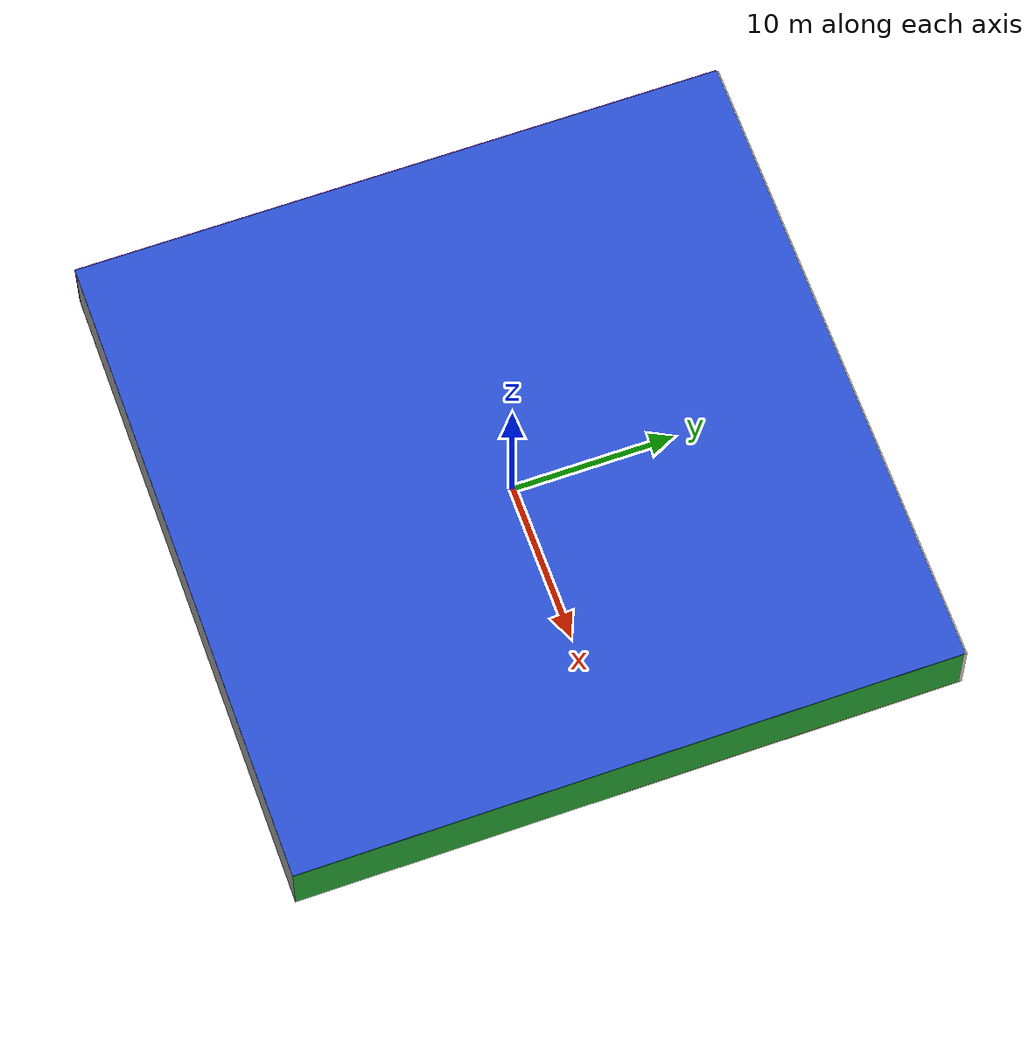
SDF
<sdf version="1.4">
 <world name="default">
  <physics type="ode">
   <max_step_size>0.001</max_step_size>
   <real_time_factor>1</real_time_factor>
   <real_time_update_rate>1000</real_time_update_rate>
   <gravity>0 0 -9.8</gravity>
  </physics>
  <scene><ambient>0.4 0.4 0.4 1</ambient><background>0.7 0.7 0.7 1</background><shadows>1</shadows></scene>
  <model name="Surrounding">
   <static>1</static>
   <link name="Ceiling">
    <collision name="Ceiling_Collision"><geometry><box><size>40 40 0.1</size></box></geometry></collision>
    <visual name="Ceiling_Visual">
     <geometry><box><size>40 40 0.1</size></box></geometry>
     <material>
      <script><uri>file://media/materials/scripts/gazebo.material</uri><name>Gazebo/BlueGlow</name></script>
     </material>
    </visual>
    <pose>0 0 4.05 0 0 0</pose>
   </link>
   <link name="Wall_South">
    <collision name="Wall_South_Collision">
     <geometry><box><size>40 0 4</size></box></geometry>
     <pose>0 0 2 0 -0 0</pose>
    </collision>
    <visual name="Wall_South_Visual">
     <pose>0 0 2 0 -0 0</pose>
     <geometry><box><size>40 0 4</size></box></geometry>
     <material>
      <script><uri>file://media/materials/scripts/gazebo.material</uri><name>Gazebo/LightOff</name></script>
     </material>
    </visual>
    <velocity_decay><linear>0</linear><angular>0</angular></velocity_decay>
    <pose>0 -20 0 0 -0 0</pose>
   </link>
   <link name="Wall_East">
    <collision name="Wall_21_Collision">
     <geometry><box><size>40 0 4</size></box></geometry>
     <pose>0 0 2 0 -0 0</pose>
    </collision>
    <visual name="Wall_21_Visual">
     <pose>0 0 2 0 -0 0</pose>
     <geometry><box><size>40 0 4</size></box></geometry>
     <material>
      <script><uri>file://media/materials/scripts/gazebo.material</uri><name>Gazebo/Green</name></script>
     </material>
    </visual>
    <velocity_decay><linear>0</linear><angular>0</angular></velocity_decay>
    <pose>20 0 0 0 -0 1.5708</pose>
   </link>
   <link name="Wall_North">
    <collision name="Wall_22_Collision">
     <geometry><box><size>40 0.2 4</size></box></geometry>
     <pose>0 0 2 0 -0 0</pose>
    </collision>
    <visual name="Wall_22_Visual">
     <pose>0 0 2 0 -0 0</pose>
     <geometry><box><size>40 0.2 4</size></box></geometry>
     <material>
      <script><uri>file://media/materials/scripts/gazebo.material</uri><name>Gazebo/PaintedWall</name></script>
     </material>
    </visual>
    <velocity_decay><linear>0</linear><angular>0</angular></velocity_decay>
    <pose>0 20 0 0 -0 0</pose>
   </link>
   <link name="Wall_West">
    <collision name="Wall_23_Collision">
     <geometry><box><size>40 0.2 4</size></box></geometry>
     <pose>0 0 2 0 -0 0</pose>
    </collision>
    <visual name="Wall_23_Visual">
     <pose>0 0 2 0 -0 0</pose>
     <geometry><box><size>40 0.2 4</size></box></geometry>
     <material>
      <script><uri>file://media/materials/scripts/gazebo.material</uri><name>Gazebo/PurpleGlow</name></script>
     </material>
    </visual>
    <velocity_decay><linear>0</linear><angular>0</angular></velocity_decay>
    <pose>-20 0 0 0 0 -1.5708</pose>
   </link>
   <link name="Ground_link">
    <collision name="collision">
     <pose>0 0 .05 0 -0 0</pose>
     <geometry><box><size>40 40 0.1</size></box></geometry>
    </collision>
    <visual name="visual">
     <pose>0 0 .05 0 -0 0</pose>
     <geometry><box><size>40 40 0.1</size></box></geometry>
     <material>
      <script><uri>file://media/materials/scripts/gazebo.material</uri><name>Gazebo/Wood</name></script>
     </material>
    </visual>
   </link>
   <static>1</static>
  </model>
  <spherical_coordinates>
   <surface_model>EARTH_WGS84</surface_model>
   <latitude_deg>0</latitude_deg>
   <longitude_deg>0</longitude_deg>
   <elevation>0</elevation>
   <heading_deg>0</heading_deg>
  </spherical_coordinates>
  <light name="lightball_0" type="diffuse">
   <diffuse>0.8 0.8 0.8 1</diffuse>
   <specular>0.2 0.2 0.2 1</specular>
   <attenuation>
    <range>100</range>
    <constant>0.7</constant>
    <linear>0.01</linear>
    <quadratic>0.001</quadratic>
   </attenuation>
   <direction>-0.5 0.1 -0.9</direction>
   <pose>-7.49268496677 5.64581170607 1.53740365004 0 0 0</pose>
  </light>
  <include>
   <uri>model://textured_shapes</uri>
   <pose>-17.7139396784 -5.66665036204 0 0 0 1.77857746207</pose>
  </include>
  <include>
   <uri>model://construction_cone</uri>
   <pose>-16.902303596 3.53384082745 0 0 0 1.17820589428</pose>
  </include>
  <include><uri>model://cabinet</uri><pose>-13.603575059 -8.8379703978 0 0 0 2.51397249955</pose></include>
  <include><uri>model://table</uri><pose>-13.3305007811 0.425295118613 0 0 0 2.99754832821</pose></include>
  <include><uri>model://cabinet</uri><pose>-14.3325957967 3.57796937343 0 0 0 2.78332703134</pose></include>
  <include><uri>model://cabinet</uri><pose>-10.4963402387 -17.9041706436 0 0 0 2.9330787261</pose></include>
  <include><uri>model://cabinet</uri><pose>-9.59631780196 -9.64378596842 0 0 0 2.1701757286</pose></include>
  <include><uri>model://cabinet</uri><pose>-9.21484892748 -5.4380449082 0 0 0 1.11270043813</pose></include>
  <include><uri>model://cabinet</uri><pose>-8.12812921546 11.6013227913 0 0 0 0.618365578345</pose></include>
  <include><uri>model://cabinet</uri><pose>-1.88743537067 11.6414455122 0 0 0 0.126953449659</pose></include>
  <include>
   <uri>model://textured_shapes</uri>
   <pose>0.747187110208 1.00697843749 0 0 0 2.60265532698</pose>
  </include>
  <include>
   <uri>model://construction_cone</uri>
   <pose>4.13556850455 18.7465525698 0 0 0 2.8279445582</pose>
  </include>
  <include>
   <uri>model://robocup_3Dsim_goal</uri>
   <pose>6.2053045 5.97335531568 0 0 0 2.11258530609</pose>
  </include>
  <include>
   <uri>model://textured_shapes</uri>
   <pose>10.3669894287 -12.6572443429 0 0 0 0.0591766086448</pose>
  </include>
  <include>
   <uri>model://construction_cone</uri>
   <pose>9.25496805019 2.38136271672 0 0 0 2.94043046932</pose>
  </include>
  <include>
   <uri>model://robocup_3Dsim_goal</uri>
   <pose>8.85381456302 16.2263090684 0 0 0 2.62539319858</pose>
  </include>
  <include>
   <uri>model://construction_cone</uri>
   <pose>11.951099899 -12.6416692971 0 0 0 0.153515249638</pose>
  </include>
  <include>
   <uri>model://robocup_3Dsim_goal</uri>
   <pose>15.1668383576 15.5690490581 0 0 0 2.35776373647</pose>
  </include>
  <include>
   <uri>model://construction_cone</uri>
   <pose>15.4783931576 17.4967224588 0 0 0 3.11510727463</pose>
  </include>
  <include><uri>model://cabinet</uri><pose>19.029194274 -11.5198528219 0 0 0 3.02029419446</pose></include>
  <include><uri>model://table</uri><pose>18.1528489749 -8.35833427066 0 0 0 1.42211855814</pose></include>
 </world>
</sdf>

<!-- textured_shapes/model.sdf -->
<sdf version="1.6">
  <model name="textured_shapes">
    <pose>0 0 0.5 0 0 0</pose>
    <link name="box">
      <pose>0 -1.5 0 0 0 0</pose>
      <collision name="collision">
        <geometry>
          <box>
            <size>1 1 1</size>
          </box>
        </geometry>
      </collision>
      <visual name="visual">
        <geometry>
          <box>
            <size>1 1 1</size>
          </box>
        </geometry>
        <material>
          <script>
            <uri>model://../model_source/models/textured_shapes/materials/scripts</uri>
            <uri>model://../model_source/models/textured_shapes/materials/textures</uri>
            <name>TexturedShape/Squares</name>
          </script>
        </material>
      </visual>
    </link>
    <link name="sphere">
      <collision name="collision">
        <geometry>
          <sphere>
            <radius>0.5</radius>
          </sphere>
        </geometry>
      </collision>
      <visual name="visual">
        <geometry>
          <sphere>
            <radius>0.5</radius>
          </sphere>
        </geometry>
        <material>
          <script>
            <uri>model://../model_source/models/textured_shapes/materials/scripts</uri>
            <uri>model://../model_source/models/textured_shapes/materials/textures</uri>
            <name>TexturedShape/Squares</name>
          </script>
        </material>
      </visual>
    </link>
    <link name="cylinder">
      <pose>0 1.5 0 0 0 0</pose>
      <collision name="collision">
        <geometry>
          <cylinder>
            <radius>0.5</radius>
            <length>1</length>
          </cylinder>
        </geometry>
      </collision>
      <visual name="visual">
        <geometry>
          <cylinder>
            <radius>0.5</radius>
            <length>1</length>
          </cylinder>
        </geometry>
        <material>
          <script>
            <uri>model://../model_source/models/textured_shapes/materials/scripts</uri>
            <uri>model://../model_source/models/textured_shapes/materials/textures</uri>
            <name>TexturedShape/Squares</name>
          </script>
        </material>
      </visual>
    </link>
  </model>
</sdf>

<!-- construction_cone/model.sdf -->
<sdf version="1.5">
  <model name="Construction Cone">
    <link name="link">
      <collision name="collision">
        <geometry>
          <mesh>
            <scale>10 10 10</scale>
            <uri>file://isr-testbed/construction_cone/meshes/construction_cone.dae</uri>
          </mesh>
        </geometry>
      </collision>
      <visual name="visual">
        <geometry>
          <mesh>
            <scale>10 10 10</scale>
            <uri>file://isr-testbed/construction_cone/meshes/construction_cone.dae</uri>
          </mesh>
        </geometry>
      </visual>
    </link>
  </model>
</sdf>

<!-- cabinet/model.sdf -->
<sdf version="1.5">
  <model name="cabinet">
    <static>true</static>
    <link name="cabinet_bottom_plate">
      <inertial>
        <pose>0 0 -1 0 0 0</pose>
        <inertia>
          <ixx>2.050000</ixx>
          <ixy>0</ixy>
          <ixz>0</ixz>
          <iyy>2.050000</iyy>
          <iyz>0</iyz>
          <izz>2.050000</izz>
        </inertia>
        <mass>25.000000</mass>
      </inertial>
      <collision name="cabinet_bottom_plate_geom">
        <pose>0 0 0.010000 0 0 0</pose>
        <geometry>
          <box>
            <size>0.450000 0.450000 0.020000</size>
          </box>
        </geometry>
      </collision>
      <visual name="cabinet_bottom_plate_geom_visual">
        <pose>0 0 0.010000 0 0 0</pose>
        <geometry>
          <box>
            <size>0.450000 0.450000 0.020000</size>
          </box>
        </geometry>
        <material>
          <script>
            <uri>model://media/materials/scripts/gazebo.material</uri>
            <name>Gazebo/Wood</name>
          </script>
        </material>
      </visual>
      <collision name="cabinet_bottom_plate_geom_cabinet_back_plate">
        <pose>0.235000 0 0.510000 0 0 0</pose>
        <geometry>
          <box>
            <size>0.020000 0.450000 1.020000</size>
          </box>
        </geometry>
      </collision>
      <visual name="cabinet_bottom_plate_geom_cabinet_back_plate_visual">
        <pose>0.235000 0 0.510000 0 0 0</pose>
        <geometry>
          <box>
            <size>0.020000 0.450000 1.020000</size>
          </box>
        </geometry>
        <material>
          <script>
            <uri>model://media/materials/scripts/gazebo.material</uri>
            <name>Gazebo/Wood</name>
          </script>
        </material>
      </visual>
      <collision name="cabinet_bottom_plate_geom_cabinet_left_plate">
        <pose>0 0.235000 0.510000 0 0 0</pose>
        <geometry>
          <box>
            <size>0.450000 0.020000 1.020000</size>
          </box>
        </geometry>
      </collision>
      <visual name="cabinet_bottom_plate_geom_cabinet_left_plate_visual">
        <pose>0 0.235000 0.510000 0 0 0</pose>
        <geometry>
          <box>
            <size>0.450000 0.020000 1.020000</size>
          </box>
        </geometry>
        <material>
          <script>
            <uri>model://media/materials/scripts/gazebo.material</uri>
            <name>Gazebo/Wood</name>
          </script>
        </material>
      </visual>
      <collision name="cabinet_bottom_plate_geom_cabinet_middle_plate">
        <pose>0 0 0.510000 0 0 0</pose>
        <geometry>
          <box>
            <size>0.450000 0.450000 0.020000</size>
          </box>
        </geometry>
      </collision>
      <visual name="cabinet_bottom_plate_geom_cabinet_middle_plate_visual">
        <pose>0 0 0.510000 0 0 0</pose>
        <geometry>
          <box>
            <size>0.450000 0.450000 0.020000</size>
          </box>
        </geometry>
        <material>
          <script>
            <uri>model://media/materials/scripts/gazebo.material</uri>
            <name>Gazebo/Wood</name>
          </script>
        </material>
      </visual>
      <collision name="cabinet_bottom_plate_geom_cabinet_right_plate">
        <pose>0 -0.235000 0.510000 0 0 0</pose>
        <geometry>
          <box>
            <size>0.450000 0.020000 1.020000</size>
          </box>
        </geometry>
      </collision>
      <visual name="cabinet_bottom_plate_geom_cabinet_right_plate_visual">
        <pose>0 -0.235000 0.510000 0 0 0</pose>
        <geometry>
          <box>
            <size>0.450000 0.020000 1.020000</size>
          </box>
        </geometry>
        <material>
          <script>
            <uri>model://media/materials/scripts/gazebo.material</uri>
            <name>Gazebo/Wood</name>
          </script>
        </material>
      </visual>
      <collision name="cabinet_bottom_plate_geom_cabinet_top_plate">
        <pose>0 0 1.010000 0 0 0</pose>
        <geometry>
          <box>
            <size>0.450000 0.450000 0.020000</size>
          </box>
        </geometry>
      </collision>
      <visual name="cabinet_bottom_plate_geom_cabinet_top_plate_visual">
        <pose>0 0 1.010000 0 0 0</pose>
        <geometry>
          <box>
            <size>0.450000 0.450000 0.020000</size>
          </box>
        </geometry>
        <material>
          <script>
            <uri>model://media/materials/scripts/gazebo.material</uri>
            <name>Gazebo/Wood</name>
          </script>
        </material>
      </visual>
    </link>
  </model>
</sdf>

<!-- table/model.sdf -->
<sdf version="1.5">
  <model name="table">
    <static>true</static>
    <link name="link">
      <collision name="surface">
        <pose>0 0 1.0 0 0 0</pose>
        <geometry>
          <box>
            <size>1.5 0.8 0.03</size>
          </box>
        </geometry>
        <surface>
          <friction>
            <ode>
              <mu>0.6</mu>
              <mu2>0.6</mu2>
            </ode>
          </friction>
        </surface>
      </collision>
      <visual name="visual1">
        <pose>0 0 1.0 0 0 0</pose>
        <geometry>
          <box>
            <size>1.5 0.8 0.03</size>
          </box>
        </geometry>
        <material>
          <script>
            <uri>model://media/materials/scripts/gazebo.material</uri>
            <name>Gazebo/Wood</name>
          </script>
        </material>
      </visual>
      <collision name="front_left_leg">
        <pose>0.68 0.38 0.5 0 0 0</pose>
        <geometry>
          <cylinder>
            <radius>0.02</radius>
            <length>1.0</length>
          </cylinder>
        </geometry>
      </collision>
      <visual name="front_left_leg">
        <pose>0.68 0.38 0.5 0 0 0</pose>
        <geometry>
          <cylinder>
            <radius>0.02</radius>
            <length>1.0</length>
          </cylinder>
        </geometry>
        <material>
          <script>
            <uri>model://media/materials/scripts/gazebo.material</uri>
            <name>Gazebo/Grey</name>
          </script>
        </material>
      </visual>
      <collision name="front_right_leg">
        <pose>0.68 -0.38 0.5 0 0 0</pose>
        <geometry>
          <cylinder>
            <radius>0.02</radius>
            <length>1.0</length>
          </cylinder>
        </geometry>
      </collision>
      <visual name="front_right_leg">
        <pose>0.68 -0.38 0.5 0 0 0</pose>
        <geometry>
          <cylinder>
            <radius>0.02</radius>
            <length>1.0</length>
          </cylinder>
        </geometry>
        <material>
          <script>
            <uri>model://media/materials/scripts/gazebo.material</uri>
            <name>Gazebo/Grey</name>
          </script>
        </material>
      </visual>
      <collision name="back_right_leg">
        <pose>-0.68 -0.38 0.5 0 0 0</pose>
        <geometry>
          <cylinder>
            <radius>0.02</radius>
            <length>1.0</length>
          </cylinder>
        </geometry>
      </collision>
      <visual name="back_right_leg">
        <pose>-0.68 -0.38 0.5 0 0 0</pose>
        <geometry>
          <cylinder>
            <radius>0.02</radius>
            <length>1.0</length>
          </cylinder>
        </geometry>
        <material>
          <script>
            <uri>model://media/materials/scripts/gazebo.material</uri>
            <name>Gazebo/Grey</name>
          </script>
        </material>
      </visual>
      <collision name="back_left_leg">
        <pose>-0.68 0.38 0.5 0 0 0</pose>
        <geometry>
          <cylinder>
            <radius>0.02</radius>
            <length>1.0</length>
          </cylinder>
        </geometry>
      </collision>
      <visual name="back_left_leg">
        <pose>-0.68 0.38 0.5 0 0 0</pose>
        <geometry>
          <cylinder>
            <radius>0.02</radius>
            <length>1.0</length>
          </cylinder>
        </geometry>
        <material>
          <script>
            <uri>model://media/materials/scripts/gazebo.material</uri>
            <name>Gazebo/Grey</name>
          </script>
        </material>
      </visual>
    </link>
  </model>
</sdf>

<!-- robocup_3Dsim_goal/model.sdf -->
<sdf version="1.5">
  <model name="robocup_3d_goal">
    <static>true</static>
    <link name="left_post">
      <pose>0 1.05 0.45 0 0 0</pose>
      <collision name="collision">
        <geometry>
          <cylinder>
            <radius>0.05</radius>
            <length>0.9</length>
          </cylinder>
        </geometry>
      </collision>
      <visual name="visual">
        <geometry>
          <cylinder>
            <radius>0.05</radius>
            <length>0.9</length>
          </cylinder>
        </geometry>
        <material>
          <script>
            <uri>file://media/materials/scripts/gazebo.material</uri>
            <name>Gazebo/ZincYellow</name>
          </script>
        </material>
      </visual>
    </link>
    <link name="left_support_horiz_lower">
      <pose>0.30 1.05 0.01 0 0 0</pose>
      <collision name="collision">
        <geometry>
          <box>
            <size>0.50 0.02 0.02</size>
          </box>
        </geometry>
      </collision>
      <visual name="visual">
        <geometry>
          <box>
            <size>0.50 0.02 0.02</size>
          </box>
        </geometry>
        <material>
          <script>
            <uri>file://media/materials/scripts/gazebo.material</uri>
            <name>Gazebo/White</name>
          </script>
        </material>
      </visual>
    </link>
    <link name="left_support_horiz_upper">
      <pose>0.30 1.05 0.79 0 0 0</pose>
      <collision name="collision">
        <geometry>
          <box>
            <size>0.50 0.02 0.02</size>
          </box>
        </geometry>
      </collision>
      <visual name="visual">
        <geometry>
          <box>
            <size>0.50 0.02 0.02</size>
          </box>
        </geometry>
        <material>
          <script>
            <uri>file://media/materials/scripts/gazebo.material</uri>
            <name>Gazebo/White</name>
          </script>
        </material>
      </visual>
    </link>
    <link name="left_support_vertical">
      <pose>0.56 1.05 0.4 0 1.5708 0</pose>
      <collision name="collision">
        <geometry>
          <box>
            <size>0.80 0.02 0.02</size>
          </box>
        </geometry>
      </collision>
      <visual name="visual">
        <geometry>
          <box>
            <size>0.80 0.02 0.02</size>
          </box>
        </geometry>
        <material>
          <script>
            <uri>file://media/materials/scripts/gazebo.material</uri>
            <name>Gazebo/White</name>
          </script>
        </material>
      </visual>
    </link>
    <link name="right_support_horiz_lower">
      <pose>0.30 -1.05 0.01 0 0 0</pose>
      <collision name="collision">
        <geometry>
          <box>
            <size>0.50 0.02 0.02</size>
          </box>
        </geometry>
      </collision>
      <visual name="visual">
        <geometry>
          <box>
            <size>0.50 0.02 0.02</size>
          </box>
        </geometry>
        <material>
          <script>
            <uri>file://media/materials/scripts/gazebo.material</uri>
            <name>Gazebo/White</name>
          </script>
        </material>
      </visual>
    </link>
    <link name="right_support_horiz_upper">
      <pose>0.30 -1.05 0.79 0 0 0</pose>
      <collision name="collision">
        <geometry>
          <box>
            <size>0.50 0.02 0.02</size>
          </box>
        </geometry>
      </collision>
      <visual name="visual">
        <geometry>
          <box>
            <size>0.50 0.02 0.02</size>
          </box>
        </geometry>
        <material>
          <script>
            <uri>file://media/materials/scripts/gazebo.material</uri>
            <name>Gazebo/White</name>
          </script>
        </material>
      </visual>
    </link>
    <link name="right_support_vertical">
      <pose>0.56 -1.05 0.4 0 1.5708 0</pose>
      <collision name="collision">
        <geometry>
          <box>
            <size>0.80 0.02 0.02</size>
          </box>
        </geometry>
      </collision>
      <visual name="visual">
        <geometry>
          <box>
            <size>0.80 0.02 0.02</size>
          </box>
        </geometry>
        <material>
          <script>
            <uri>file://media/materials/scripts/gazebo.material</uri>
            <name>Gazebo/White</name>
          </script>
        </material>
      </visual>
    </link>
    <link name="center_support_horiz_lower">
      <pose>0.56 0 0.01 0 1.5708 0</pose>
      <collision name="collision">
        <geometry>
          <box>
            <size>0.02 2.08 0.02</size>
          </box>
        </geometry>
      </collision>
      <visual name="visual">
        <geometry>
          <box>
            <size>0.02 2.08 0.02</size>
          </box>
        </geometry>
        <material>
          <script>
            <uri>file://media/materials/scripts/gazebo.material</uri>
            <name>Gazebo/White</name>
          </script>
        </material>
      </visual>
    </link>
    <link name="center_support_horiz_upper">
      <pose>0.56 0 0.79 0 1.5708 0</pose>
      <collision name="collision">
        <geometry>
          <box>
            <size>0.02 2.08 0.02</size>
          </box>
        </geometry>
      </collision>
      <visual name="visual">
        <geometry>
          <box>
            <size>0.02 2.08 0.02</size>
          </box>
        </geometry>
        <material>
          <script>
            <uri>file://media/materials/scripts/gazebo.material</uri>
            <name>Gazebo/White</name>
          </script>
        </material>
      </visual>
    </link>
    <link name="right_post">
      <pose>0 -1.05 0.45 0 0 0</pose>
      <collision name="collision">
        <geometry>
          <cylinder>
            <radius>0.05</radius>
            <length>0.9</length>
          </cylinder>
        </geometry>
      </collision>
      <visual name="visual">
        <geometry>
          <cylinder>
            <radius>0.05</radius>
            <length>0.9</length>
          </cylinder>
        </geometry>
        <material>
          <script>
            <uri>file://media/materials/scripts/gazebo.material</uri>
            <name>Gazebo/ZincYellow</name>
          </script>
        </material>
      </visual>
    </link>
    <link name="crossbar">
      <pose>0 0 0.85 1.57 1.57 0</pose>
      <collision name="collision">
        <geometry>
          <cylinder>
            <radius>0.05</radius>
            <length>2.0</length>
          </cylinder>
        </geometry>
      </collision>
      <visual name="visual">
        <geometry>
          <cylinder>
            <radius>0.05</radius>
            <length>2.0</length>
          </cylinder>
        </geometry>
        <material>
          <script>
            <uri>file://media/materials/scripts/gazebo.material</uri>
            <name>Gazebo/ZincYellow</name>
          </script>
        </material>
      </visual>
    </link>
    <link name="center_net">
      <pose>0.56 0 0.40 0 0 0</pose>
      <collision name="collision">
        <geometry>
          <box>
            <size>0.01 2.1 0.80</size>
          </box>
        </geometry>
      </collision>
      <visual name="visual">
        <geometry>
          <box>
            <size>0.01 2.1 0.80</size>
          </box>
        </geometry>
        <material>
          <script>
            <uri>model://../model_source/models/robocup09_spl_field/materials/scripts/</uri>
            <uri>model://../model_source/models/robocup09_spl_field/materials/textures/</uri>
            <name>RoboCup/Net</name>
          </script>
        </material>
      </visual>
    </link>
    <link name="left_net">
      <pose>0.30 1.05 0.40 0 0 0</pose>
      <collision name="collision">
        <geometry>
          <box>
            <size>0.50 0.01 0.76</size>
          </box>
        </geometry>
      </collision>
      <visual name="visual">
        <geometry>
          <box>
            <size>0.50 0.01 0.76</size>
          </box>
        </geometry>
        <material>
          <script>
            <uri>model://../model_source/models/robocup09_spl_field/materials/scripts/</uri>
            <uri>model://../model_source/models/robocup09_spl_field/materials/textures/</uri>
            <name>RoboCup/Net</name>
          </script>
        </material>
      </visual>
    </link>
    <link name="right_net">
      <pose>0.30 -1.05 0.40 0 0 0</pose>
      <collision name="collision">
        <geometry>
          <box>
            <size>0.50 0.01 0.76</size>
          </box>
        </geometry>
      </collision>
      <visual name="visual">
        <geometry>
          <box>
            <size>0.50 0.01 0.76</size>
          </box>
        </geometry>
        <material>
          <script>
            <uri>model://../model_source/models/robocup09_spl_field/materials/scripts/</uri>
            <uri>model://../model_source/models/robocup09_spl_field/materials/textures/</uri>
            <name>RoboCup/Net</name>
          </script>
        </material>
      </visual>
    </link>
  </model>
</sdf>
